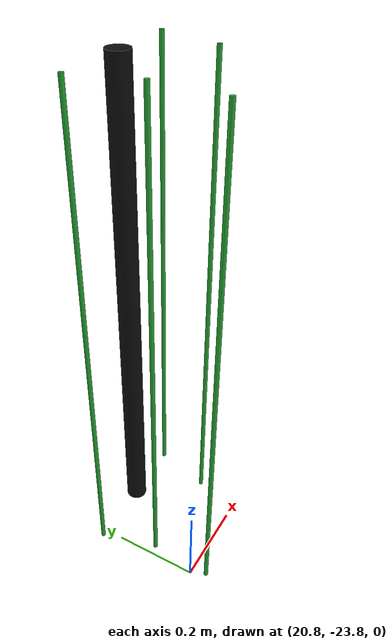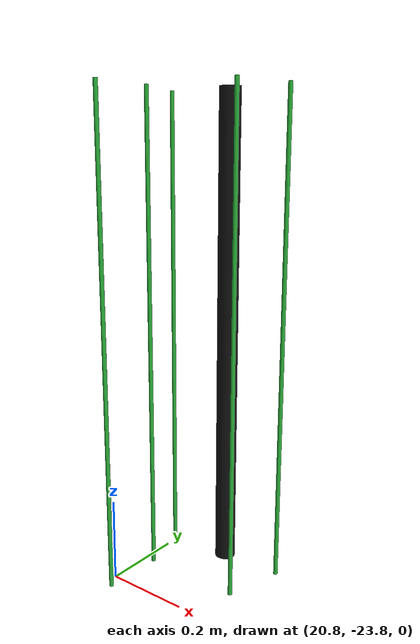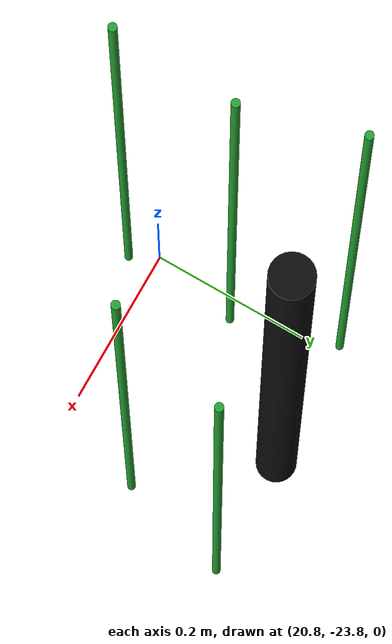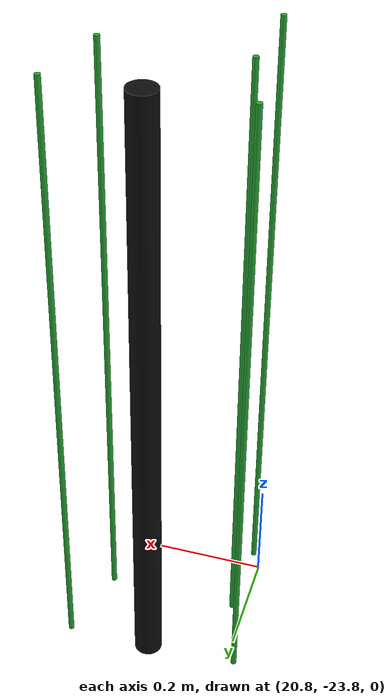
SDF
<sdf version="1.6">
 <world name="default">
  <model name="pole_13">
   <static>1</static>
   <pose>20.95 -23.55 0.575 0 -0 0</pose>
   <link name="link">
    <collision name="collision">
     <geometry><cylinder><length>1.15</length><radius>0.025</radius></cylinder></geometry>
    </collision>
    <visual name="visual">
     <geometry><cylinder><length>1.15</length><radius>0.025</radius></cylinder></geometry>
     <material>
      <script><uri>file://media/materials/scripts/gazebo.material</uri><name>Gazebo/Chrome</name></script>
      <shader type="vertex"><normal_map>__default__</normal_map></shader>
      <emissive>0.1 0.1 0.1 1</emissive>
      <specular>0.01 0.01 0.01 1</specular>
      <ambient>0.5 0.5 0.5 1</ambient>
      <diffuse>0.05 0.05 0.05 1</diffuse>
     </material>
    </visual>
   </link>
  </model>
  <model name="pole_27_clone_clone_125">
   <link name="link">
    <inertial>
     <mass>1</mass>
     <inertia><ixx>1</ixx><ixy>0</ixy><ixz>0</ixz><iyy>1</iyy><iyz>0</iyz><izz>1</izz></inertia>
    </inertial>
    <visual name="visual">
     <geometry><cylinder><length>1.15</length><radius>0.005</radius></cylinder></geometry>
     <material>
      <script><uri>file://media/materials/scripts/gazebo.material</uri><name>Gazebo/Green</name></script>
      <shader type="vertex"><normal_map>__default__</normal_map></shader>
      <emissive>0 0.1 0 1</emissive>
      <specular>0 0.01 0 1</specular>
      <ambient>0 0.5 0 1</ambient>
      <diffuse>0 0.05 0 1</diffuse>
     </material>
    </visual>
    <collision name="collision">
     <geometry><cylinder><radius>0.005</radius><length>1.15</length></cylinder></geometry>
     <surface>
      <friction>
       <ode><mu>1</mu><mu2>1</mu2><fdir1>0 0 0</fdir1><slip1>0</slip1><slip2>0</slip2></ode>
       <torsional>
        <coefficient>1</coefficient>
        <patch_radius>0</patch_radius>
        <surface_radius>0</surface_radius>
        <use_patch_radius>1</use_patch_radius>
        <ode><slip>0</slip></ode>
       </torsional>
      </friction>
      <bounce><restitution_coefficient>0</restitution_coefficient><threshold>1e+06</threshold></bounce>
      <contact>
       <collide_without_contact>0</collide_without_contact>
       <collide_without_contact_bitmask>1</collide_without_contact_bitmask>
       <collide_bitmask>1</collide_bitmask>
       <ode>
        <soft_cfm>0</soft_cfm>
        <soft_erp>0.2</soft_erp>
        <kp>1e+13</kp>
        <kd>1</kd>
        <max_vel>0.01</max_vel>
        <min_depth>0</min_depth>
       </ode>
       <bullet>
        <split_impulse>1</split_impulse>
        <split_impulse_penetration_threshold>-0.01</split_impulse_penetration_threshold>
        <soft_cfm>0</soft_cfm>
        <soft_erp>0.2</soft_erp>
        <kp>1e+13</kp>
        <kd>1</kd>
       </bullet>
      </contact>
     </surface>
    </collision>
   </link>
   <static>1</static>
   <pose>20.7862 -23.554 0.575 0 -0 0</pose>
  </model>
  <model name="pole_27_clone_clone_126">
   <link name="link">
    <inertial>
     <mass>1</mass>
     <inertia><ixx>1</ixx><ixy>0</ixy><ixz>0</ixz><iyy>1</iyy><iyz>0</iyz><izz>1</izz></inertia>
    </inertial>
    <visual name="visual">
     <geometry><cylinder><length>1.15</length><radius>0.005</radius></cylinder></geometry>
     <material>
      <script><uri>file://media/materials/scripts/gazebo.material</uri><name>Gazebo/Green</name></script>
      <shader type="vertex"><normal_map>__default__</normal_map></shader>
      <emissive>0 0.1 0 1</emissive>
      <specular>0 0.01 0 1</specular>
      <ambient>0 0.5 0 1</ambient>
      <diffuse>0 0.05 0 1</diffuse>
     </material>
    </visual>
    <collision name="collision">
     <geometry><cylinder><radius>0.005</radius><length>1.15</length></cylinder></geometry>
     <surface>
      <friction>
       <ode><mu>1</mu><mu2>1</mu2><fdir1>0 0 0</fdir1><slip1>0</slip1><slip2>0</slip2></ode>
       <torsional>
        <coefficient>1</coefficient>
        <patch_radius>0</patch_radius>
        <surface_radius>0</surface_radius>
        <use_patch_radius>1</use_patch_radius>
        <ode><slip>0</slip></ode>
       </torsional>
      </friction>
      <bounce><restitution_coefficient>0</restitution_coefficient><threshold>1e+06</threshold></bounce>
      <contact>
       <collide_without_contact>0</collide_without_contact>
       <collide_without_contact_bitmask>1</collide_without_contact_bitmask>
       <collide_bitmask>1</collide_bitmask>
       <ode>
        <soft_cfm>0</soft_cfm>
        <soft_erp>0.2</soft_erp>
        <kp>1e+13</kp>
        <kd>1</kd>
        <max_vel>0.01</max_vel>
        <min_depth>0</min_depth>
       </ode>
       <bullet>
        <split_impulse>1</split_impulse>
        <split_impulse_penetration_threshold>-0.01</split_impulse_penetration_threshold>
        <soft_cfm>0</soft_cfm>
        <soft_erp>0.2</soft_erp>
        <kp>1e+13</kp>
        <kd>1</kd>
       </bullet>
      </contact>
     </surface>
    </collision>
   </link>
   <static>1</static>
   <pose>21.1016 -23.5471 0.575 0 -0 0</pose>
  </model>
  <model name="pole_27_clone_clone_127">
   <link name="link">
    <inertial>
     <mass>1</mass>
     <inertia><ixx>1</ixx><ixy>0</ixy><ixz>0</ixz><iyy>1</iyy><iyz>0</iyz><izz>1</izz></inertia>
    </inertial>
    <visual name="visual">
     <geometry><cylinder><length>1.15</length><radius>0.005</radius></cylinder></geometry>
     <material>
      <script><uri>file://media/materials/scripts/gazebo.material</uri><name>Gazebo/Green</name></script>
      <shader type="vertex"><normal_map>__default__</normal_map></shader>
      <emissive>0 0.1 0 1</emissive>
      <specular>0 0.01 0 1</specular>
      <ambient>0 0.5 0 1</ambient>
      <diffuse>0 0.05 0 1</diffuse>
     </material>
    </visual>
    <collision name="collision">
     <geometry><cylinder><radius>0.005</radius><length>1.15</length></cylinder></geometry>
     <surface>
      <friction>
       <ode><mu>1</mu><mu2>1</mu2><fdir1>0 0 0</fdir1><slip1>0</slip1><slip2>0</slip2></ode>
       <torsional>
        <coefficient>1</coefficient>
        <patch_radius>0</patch_radius>
        <surface_radius>0</surface_radius>
        <use_patch_radius>1</use_patch_radius>
        <ode><slip>0</slip></ode>
       </torsional>
      </friction>
      <bounce><restitution_coefficient>0</restitution_coefficient><threshold>1e+06</threshold></bounce>
      <contact>
       <collide_without_contact>0</collide_without_contact>
       <collide_without_contact_bitmask>1</collide_without_contact_bitmask>
       <collide_bitmask>1</collide_bitmask>
       <ode>
        <soft_cfm>0</soft_cfm>
        <soft_erp>0.2</soft_erp>
        <kp>1e+13</kp>
        <kd>1</kd>
        <max_vel>0.01</max_vel>
        <min_depth>0</min_depth>
       </ode>
       <bullet>
        <split_impulse>1</split_impulse>
        <split_impulse_penetration_threshold>-0.01</split_impulse_penetration_threshold>
        <soft_cfm>0</soft_cfm>
        <soft_erp>0.2</soft_erp>
        <kp>1e+13</kp>
        <kd>1</kd>
       </bullet>
      </contact>
     </surface>
    </collision>
   </link>
   <static>1</static>
   <pose>20.8242 -23.687 0.575 0 -0 0</pose>
  </model>
  <model name="pole_27_clone_clone_128">
   <link name="link">
    <inertial>
     <mass>1</mass>
     <inertia><ixx>1</ixx><ixy>0</ixy><ixz>0</ixz><iyy>1</iyy><iyz>0</iyz><izz>1</izz></inertia>
    </inertial>
    <visual name="visual">
     <geometry><cylinder><length>1.15</length><radius>0.005</radius></cylinder></geometry>
     <material>
      <script><uri>file://media/materials/scripts/gazebo.material</uri><name>Gazebo/Green</name></script>
      <shader type="vertex"><normal_map>__default__</normal_map></shader>
      <emissive>0 0.1 0 1</emissive>
      <specular>0 0.01 0 1</specular>
      <ambient>0 0.5 0 1</ambient>
      <diffuse>0 0.05 0 1</diffuse>
     </material>
    </visual>
    <collision name="collision">
     <geometry><cylinder><radius>0.005</radius><length>1.15</length></cylinder></geometry>
     <surface>
      <friction>
       <ode><mu>1</mu><mu2>1</mu2><fdir1>0 0 0</fdir1><slip1>0</slip1><slip2>0</slip2></ode>
       <torsional>
        <coefficient>1</coefficient>
        <patch_radius>0</patch_radius>
        <surface_radius>0</surface_radius>
        <use_patch_radius>1</use_patch_radius>
        <ode><slip>0</slip></ode>
       </torsional>
      </friction>
      <bounce><restitution_coefficient>0</restitution_coefficient><threshold>1e+06</threshold></bounce>
      <contact>
       <collide_without_contact>0</collide_without_contact>
       <collide_without_contact_bitmask>1</collide_without_contact_bitmask>
       <collide_bitmask>1</collide_bitmask>
       <ode>
        <soft_cfm>0</soft_cfm>
        <soft_erp>0.2</soft_erp>
        <kp>1e+13</kp>
        <kd>1</kd>
        <max_vel>0.01</max_vel>
        <min_depth>0</min_depth>
       </ode>
       <bullet>
        <split_impulse>1</split_impulse>
        <split_impulse_penetration_threshold>-0.01</split_impulse_penetration_threshold>
        <soft_cfm>0</soft_cfm>
        <soft_erp>0.2</soft_erp>
        <kp>1e+13</kp>
        <kd>1</kd>
       </bullet>
      </contact>
     </surface>
    </collision>
   </link>
   <static>1</static>
   <pose>21.0632 -23.6881 0.575 0 -0 0</pose>
  </model>
  <model name="pole_27_clone_clone_130">
   <link name="link">
    <inertial>
     <mass>1</mass>
     <inertia><ixx>1</ixx><ixy>0</ixy><ixz>0</ixz><iyy>1</iyy><iyz>0</iyz><izz>1</izz></inertia>
    </inertial>
    <visual name="visual">
     <geometry><cylinder><length>1.15</length><radius>0.005</radius></cylinder></geometry>
     <material>
      <script><uri>file://media/materials/scripts/gazebo.material</uri><name>Gazebo/Green</name></script>
      <shader type="vertex"><normal_map>__default__</normal_map></shader>
      <emissive>0 0.1 0 1</emissive>
      <specular>0 0.01 0 1</specular>
      <ambient>0 0.5 0 1</ambient>
      <diffuse>0 0.05 0 1</diffuse>
     </material>
    </visual>
    <collision name="collision">
     <geometry><cylinder><radius>0.005</radius><length>1.15</length></cylinder></geometry>
     <surface>
      <friction>
       <ode><mu>1</mu><mu2>1</mu2><fdir1>0 0 0</fdir1><slip1>0</slip1><slip2>0</slip2></ode>
       <torsional>
        <coefficient>1</coefficient>
        <patch_radius>0</patch_radius>
        <surface_radius>0</surface_radius>
        <use_patch_radius>1</use_patch_radius>
        <ode><slip>0</slip></ode>
       </torsional>
      </friction>
      <bounce><restitution_coefficient>0</restitution_coefficient><threshold>1e+06</threshold></bounce>
      <contact>
       <collide_without_contact>0</collide_without_contact>
       <collide_without_contact_bitmask>1</collide_without_contact_bitmask>
       <collide_bitmask>1</collide_bitmask>
       <ode>
        <soft_cfm>0</soft_cfm>
        <soft_erp>0.2</soft_erp>
        <kp>1e+13</kp>
        <kd>1</kd>
        <max_vel>0.01</max_vel>
        <min_depth>0</min_depth>
       </ode>
       <bullet>
        <split_impulse>1</split_impulse>
        <split_impulse_penetration_threshold>-0.01</split_impulse_penetration_threshold>
        <soft_cfm>0</soft_cfm>
        <soft_erp>0.2</soft_erp>
        <kp>1e+13</kp>
        <kd>1</kd>
       </bullet>
      </contact>
     </surface>
    </collision>
   </link>
   <static>1</static>
   <pose>20.8179 -23.8337 0.575 0 -0 0</pose>
  </model>
 </world>
</sdf>
